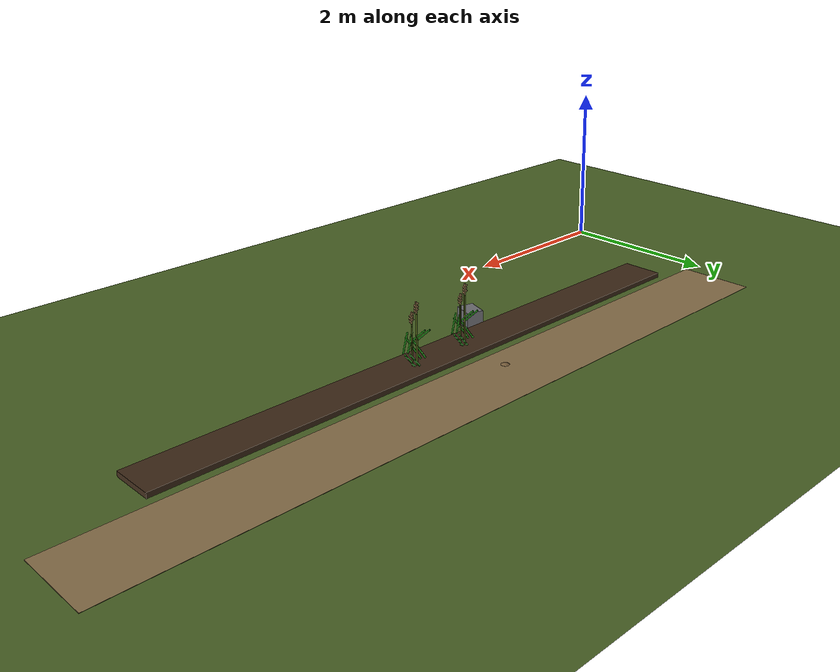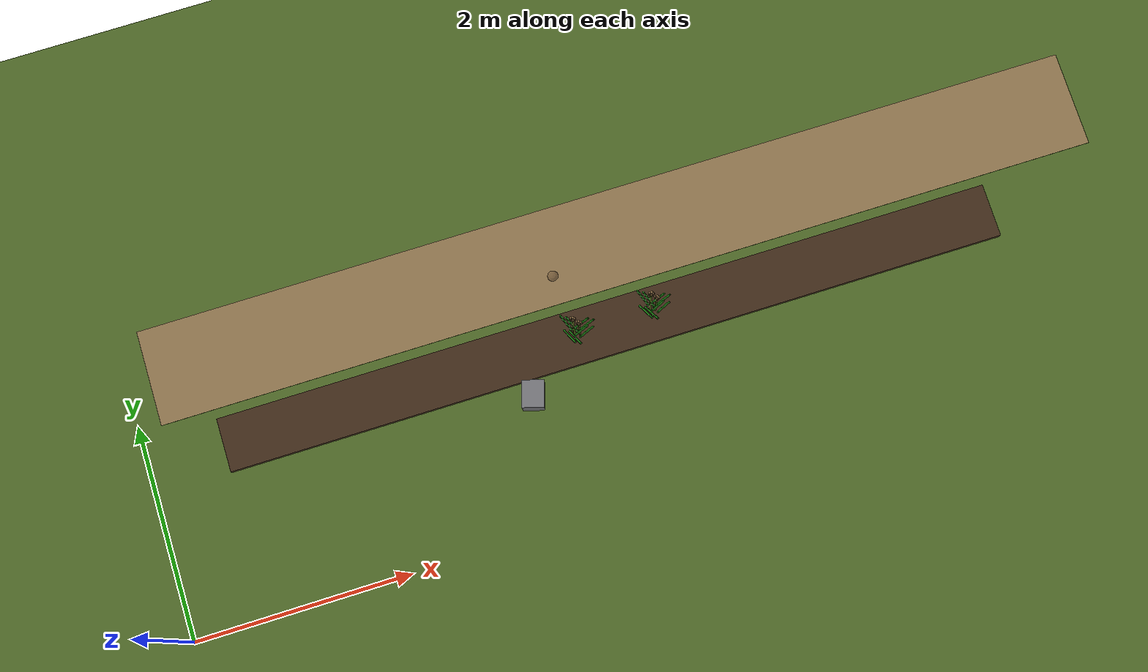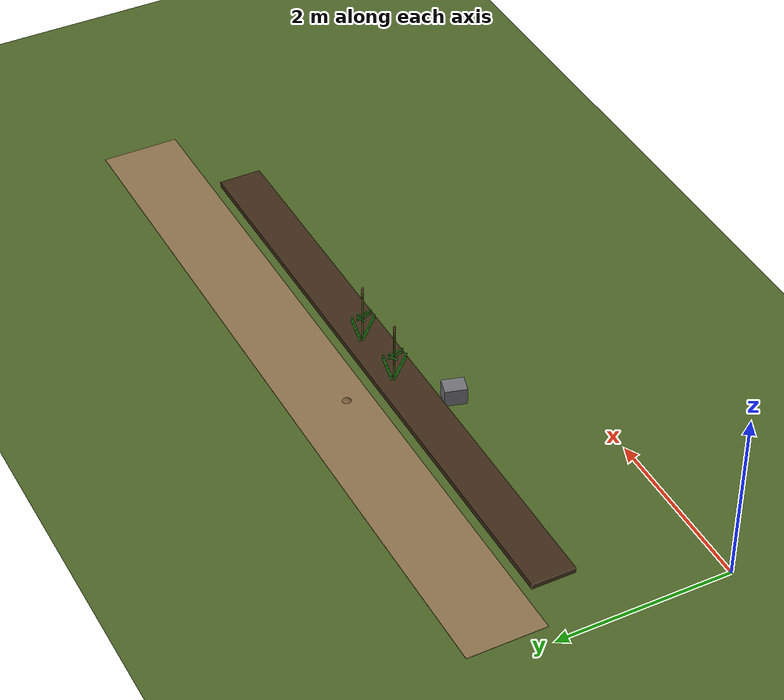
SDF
<sdf version="1.6">
 <world name="default">
  <model name="ground">
   <static>true</static>
   <link name="link">
    <collision name="col"><geometry><plane><normal>0 0 1</normal><size>40 40</size></plane></geometry></collision>
    <visual name="vis">
     <geometry><plane><normal>0 0 1</normal><size>40 40</size></plane></geometry>
     <material><ambient>0.30 0.40 0.15 1</ambient><diffuse>0.30 0.40 0.15 1</diffuse></material>
    </visual>
   </link>
  </model>
  <model name="path_2">
   <static>true</static>
   <pose>4.65 2.40 0.002 0 0 0.00</pose>
   <link name="link">
    <visual name="v">
     <geometry><box><size>8.90 0.90 0.004</size></box></geometry>
     <material><ambient>0.55 0.45 0.30 1</ambient><diffuse>0.55 0.45 0.30 1</diffuse></material>
    </visual>
   </link>
  </model>
  <model name="bed_2a">
   <static>true</static>
   <pose>4.35 1.60 0.030 0 0 0.00</pose>
   <link name="link">
    <visual name="v">
     <geometry><box><size>7.30 0.50 0.060</size></box></geometry>
     <material><ambient>0.25 0.17 0.10 1</ambient><diffuse>0.25 0.17 0.10 1</diffuse></material>
    </visual>
   </link>
  </model>
  <model name="plant_25">
   <static>true</static>
   <pose>4.00 1.64 0 0 0 0</pose>
   <link name="link">
    <visual name="stem_0">
     <pose>0.000 0.000 0.320 0.000 0.000 0.000</pose>
     <geometry><cylinder><radius>0.01</radius><length>0.64</length></cylinder></geometry>
     <material><ambient>0.30 0.38 0.08 1</ambient><diffuse>0.30 0.38 0.08 1</diffuse></material>
    </visual>
    <visual name="leaf_0_0">
     <pose>0.055 0.045 0.130 0.000 0.700 0.150</pose>
     <geometry><cylinder><radius>0.009</radius><length>0.3</length></cylinder></geometry>
     <material><ambient>0.10 0.48 0.06 1</ambient><diffuse>0.10 0.48 0.06 1</diffuse></material>
    </visual>
    <visual name="leaf_0_1">
     <pose>-0.055 -0.045 0.230 0.000 -0.720 1.900</pose>
     <geometry><cylinder><radius>0.009</radius><length>0.28</length></cylinder></geometry>
     <material><ambient>0.10 0.48 0.06 1</ambient><diffuse>0.10 0.48 0.06 1</diffuse></material>
    </visual>
    <visual name="leaf_0_2">
     <pose>0.055 -0.045 0.320 0.000 0.780 3.700</pose>
     <geometry><cylinder><radius>0.009</radius><length>0.24</length></cylinder></geometry>
     <material><ambient>0.10 0.48 0.06 1</ambient><diffuse>0.10 0.48 0.06 1</diffuse></material>
    </visual>
    <visual name="leaf_0_3">
     <pose>-0.055 0.045 0.400 0.000 -0.800 5.200</pose>
     <geometry><cylinder><radius>0.009</radius><length>0.2</length></cylinder></geometry>
     <material><ambient>0.10 0.48 0.06 1</ambient><diffuse>0.10 0.48 0.06 1</diffuse></material>
    </visual>
    <visual name="stem_1">
     <pose>0.045 -0.025 0.265 0.000 0.000 0.000</pose>
     <geometry><cylinder><radius>0.008</radius><length>0.53</length></cylinder></geometry>
     <material><ambient>0.30 0.38 0.08 1</ambient><diffuse>0.30 0.38 0.08 1</diffuse></material>
    </visual>
    <visual name="leaf_1_0">
     <pose>0.100 0.020 0.130 0.000 0.700 0.150</pose>
     <geometry><cylinder><radius>0.009</radius><length>0.3</length></cylinder></geometry>
     <material><ambient>0.10 0.48 0.06 1</ambient><diffuse>0.10 0.48 0.06 1</diffuse></material>
    </visual>
    <visual name="leaf_1_1">
     <pose>-0.010 -0.070 0.230 0.000 -0.720 1.900</pose>
     <geometry><cylinder><radius>0.009</radius><length>0.28</length></cylinder></geometry>
     <material><ambient>0.10 0.48 0.06 1</ambient><diffuse>0.10 0.48 0.06 1</diffuse></material>
    </visual>
    <visual name="leaf_1_2">
     <pose>0.100 -0.070 0.320 0.000 0.780 3.700</pose>
     <geometry><cylinder><radius>0.009</radius><length>0.24</length></cylinder></geometry>
     <material><ambient>0.10 0.48 0.06 1</ambient><diffuse>0.10 0.48 0.06 1</diffuse></material>
    </visual>
    <visual name="leaf_1_3">
     <pose>-0.010 0.020 0.400 0.000 -0.800 5.200</pose>
     <geometry><cylinder><radius>0.009</radius><length>0.2</length></cylinder></geometry>
     <material><ambient>0.10 0.48 0.06 1</ambient><diffuse>0.10 0.48 0.06 1</diffuse></material>
    </visual>
    <visual name="ear_axis_0">
     <pose>0.000 0.000 0.715 0.000 0.000 0.000</pose>
     <geometry><cylinder><radius>0.010</radius><length>0.13</length></cylinder></geometry>
     <material><ambient>0.52 0.40 0.25 1</ambient><diffuse>0.52 0.40 0.25 1</diffuse></material>
    </visual>
    <visual name="grain_0_0">
     <pose>0.012 -0.006 0.675 0.000 0.000 0.000</pose>
     <geometry><sphere><radius>0.012</radius></sphere></geometry>
     <material><ambient>0.52 0.40 0.25 1</ambient><diffuse>0.52 0.40 0.25 1</diffuse></material>
    </visual>
    <visual name="grain_0_1">
     <pose>-0.014 0.006 0.691 0.000 0.000 0.000</pose>
     <geometry><sphere><radius>0.012</radius></sphere></geometry>
     <material><ambient>0.52 0.40 0.25 1</ambient><diffuse>0.52 0.40 0.25 1</diffuse></material>
    </visual>
    <visual name="grain_0_2">
     <pose>0.016 -0.006 0.707 0.000 0.000 0.000</pose>
     <geometry><sphere><radius>0.012</radius></sphere></geometry>
     <material><ambient>0.52 0.40 0.25 1</ambient><diffuse>0.52 0.40 0.25 1</diffuse></material>
    </visual>
    <visual name="grain_0_3">
     <pose>-0.012 0.006 0.723 0.000 0.000 0.000</pose>
     <geometry><sphere><radius>0.012</radius></sphere></geometry>
     <material><ambient>0.52 0.40 0.25 1</ambient><diffuse>0.52 0.40 0.25 1</diffuse></material>
    </visual>
    <visual name="grain_0_4">
     <pose>0.014 -0.006 0.739 0.000 0.000 0.000</pose>
     <geometry><sphere><radius>0.012</radius></sphere></geometry>
     <material><ambient>0.52 0.40 0.25 1</ambient><diffuse>0.52 0.40 0.25 1</diffuse></material>
    </visual>
    <visual name="grain_0_5">
     <pose>-0.016 0.006 0.755 0.000 0.000 0.000</pose>
     <geometry><sphere><radius>0.012</radius></sphere></geometry>
     <material><ambient>0.52 0.40 0.25 1</ambient><diffuse>0.52 0.40 0.25 1</diffuse></material>
    </visual>
    <visual name="ear_axis_1">
     <pose>0.045 -0.025 0.605 0.000 0.000 0.000</pose>
     <geometry><cylinder><radius>0.010</radius><length>0.13</length></cylinder></geometry>
     <material><ambient>0.52 0.40 0.25 1</ambient><diffuse>0.52 0.40 0.25 1</diffuse></material>
    </visual>
    <visual name="grain_1_0">
     <pose>0.057 -0.031 0.565 0.000 0.000 0.000</pose>
     <geometry><sphere><radius>0.012</radius></sphere></geometry>
     <material><ambient>0.52 0.40 0.25 1</ambient><diffuse>0.52 0.40 0.25 1</diffuse></material>
    </visual>
    <visual name="grain_1_1">
     <pose>0.031 -0.019 0.581 0.000 0.000 0.000</pose>
     <geometry><sphere><radius>0.012</radius></sphere></geometry>
     <material><ambient>0.52 0.40 0.25 1</ambient><diffuse>0.52 0.40 0.25 1</diffuse></material>
    </visual>
    <visual name="grain_1_2">
     <pose>0.061 -0.031 0.597 0.000 0.000 0.000</pose>
     <geometry><sphere><radius>0.012</radius></sphere></geometry>
     <material><ambient>0.52 0.40 0.25 1</ambient><diffuse>0.52 0.40 0.25 1</diffuse></material>
    </visual>
    <visual name="grain_1_3">
     <pose>0.033 -0.019 0.613 0.000 0.000 0.000</pose>
     <geometry><sphere><radius>0.012</radius></sphere></geometry>
     <material><ambient>0.52 0.40 0.25 1</ambient><diffuse>0.52 0.40 0.25 1</diffuse></material>
    </visual>
    <visual name="grain_1_4">
     <pose>0.059 -0.031 0.629 0.000 0.000 0.000</pose>
     <geometry><sphere><radius>0.012</radius></sphere></geometry>
     <material><ambient>0.52 0.40 0.25 1</ambient><diffuse>0.52 0.40 0.25 1</diffuse></material>
    </visual>
    <visual name="grain_1_5">
     <pose>0.029 -0.019 0.645 0.000 0.000 0.000</pose>
     <geometry><sphere><radius>0.012</radius></sphere></geometry>
     <material><ambient>0.52 0.40 0.25 1</ambient><diffuse>0.52 0.40 0.25 1</diffuse></material>
    </visual>
   </link>
  </model>
  <model name="plant_26">
   <static>true</static>
   <pose>4.72 1.65 0 0 0 0</pose>
   <link name="link">
    <visual name="stem_0">
     <pose>0.000 0.000 0.320 0.000 0.000 0.000</pose>
     <geometry><cylinder><radius>0.01</radius><length>0.64</length></cylinder></geometry>
     <material><ambient>0.30 0.38 0.08 1</ambient><diffuse>0.30 0.38 0.08 1</diffuse></material>
    </visual>
    <visual name="leaf_0_0">
     <pose>0.055 0.045 0.130 0.000 0.700 0.150</pose>
     <geometry><cylinder><radius>0.009</radius><length>0.3</length></cylinder></geometry>
     <material><ambient>0.10 0.48 0.06 1</ambient><diffuse>0.10 0.48 0.06 1</diffuse></material>
    </visual>
    <visual name="leaf_0_1">
     <pose>-0.055 -0.045 0.230 0.000 -0.720 1.900</pose>
     <geometry><cylinder><radius>0.009</radius><length>0.28</length></cylinder></geometry>
     <material><ambient>0.10 0.48 0.06 1</ambient><diffuse>0.10 0.48 0.06 1</diffuse></material>
    </visual>
    <visual name="leaf_0_2">
     <pose>0.055 -0.045 0.320 0.000 0.780 3.700</pose>
     <geometry><cylinder><radius>0.009</radius><length>0.24</length></cylinder></geometry>
     <material><ambient>0.10 0.48 0.06 1</ambient><diffuse>0.10 0.48 0.06 1</diffuse></material>
    </visual>
    <visual name="leaf_0_3">
     <pose>-0.055 0.045 0.400 0.000 -0.800 5.200</pose>
     <geometry><cylinder><radius>0.009</radius><length>0.2</length></cylinder></geometry>
     <material><ambient>0.10 0.48 0.06 1</ambient><diffuse>0.10 0.48 0.06 1</diffuse></material>
    </visual>
    <visual name="stem_1">
     <pose>0.045 -0.025 0.265 0.000 0.000 0.000</pose>
     <geometry><cylinder><radius>0.008</radius><length>0.53</length></cylinder></geometry>
     <material><ambient>0.30 0.38 0.08 1</ambient><diffuse>0.30 0.38 0.08 1</diffuse></material>
    </visual>
    <visual name="leaf_1_0">
     <pose>0.100 0.020 0.130 0.000 0.700 0.150</pose>
     <geometry><cylinder><radius>0.009</radius><length>0.3</length></cylinder></geometry>
     <material><ambient>0.10 0.48 0.06 1</ambient><diffuse>0.10 0.48 0.06 1</diffuse></material>
    </visual>
    <visual name="leaf_1_1">
     <pose>-0.010 -0.070 0.230 0.000 -0.720 1.900</pose>
     <geometry><cylinder><radius>0.009</radius><length>0.28</length></cylinder></geometry>
     <material><ambient>0.10 0.48 0.06 1</ambient><diffuse>0.10 0.48 0.06 1</diffuse></material>
    </visual>
    <visual name="leaf_1_2">
     <pose>0.100 -0.070 0.320 0.000 0.780 3.700</pose>
     <geometry><cylinder><radius>0.009</radius><length>0.24</length></cylinder></geometry>
     <material><ambient>0.10 0.48 0.06 1</ambient><diffuse>0.10 0.48 0.06 1</diffuse></material>
    </visual>
    <visual name="leaf_1_3">
     <pose>-0.010 0.020 0.400 0.000 -0.800 5.200</pose>
     <geometry><cylinder><radius>0.009</radius><length>0.2</length></cylinder></geometry>
     <material><ambient>0.10 0.48 0.06 1</ambient><diffuse>0.10 0.48 0.06 1</diffuse></material>
    </visual>
    <visual name="ear_axis_0">
     <pose>0.000 0.000 0.715 0.000 0.000 0.000</pose>
     <geometry><cylinder><radius>0.010</radius><length>0.13</length></cylinder></geometry>
     <material><ambient>0.52 0.40 0.25 1</ambient><diffuse>0.52 0.40 0.25 1</diffuse></material>
    </visual>
    <visual name="grain_0_0">
     <pose>0.012 -0.006 0.675 0.000 0.000 0.000</pose>
     <geometry><sphere><radius>0.012</radius></sphere></geometry>
     <material><ambient>0.52 0.40 0.25 1</ambient><diffuse>0.52 0.40 0.25 1</diffuse></material>
    </visual>
    <visual name="grain_0_1">
     <pose>-0.014 0.006 0.691 0.000 0.000 0.000</pose>
     <geometry><sphere><radius>0.012</radius></sphere></geometry>
     <material><ambient>0.52 0.40 0.25 1</ambient><diffuse>0.52 0.40 0.25 1</diffuse></material>
    </visual>
    <visual name="grain_0_2">
     <pose>0.016 -0.006 0.707 0.000 0.000 0.000</pose>
     <geometry><sphere><radius>0.012</radius></sphere></geometry>
     <material><ambient>0.52 0.40 0.25 1</ambient><diffuse>0.52 0.40 0.25 1</diffuse></material>
    </visual>
    <visual name="grain_0_3">
     <pose>-0.012 0.006 0.723 0.000 0.000 0.000</pose>
     <geometry><sphere><radius>0.012</radius></sphere></geometry>
     <material><ambient>0.52 0.40 0.25 1</ambient><diffuse>0.52 0.40 0.25 1</diffuse></material>
    </visual>
    <visual name="grain_0_4">
     <pose>0.014 -0.006 0.739 0.000 0.000 0.000</pose>
     <geometry><sphere><radius>0.012</radius></sphere></geometry>
     <material><ambient>0.52 0.40 0.25 1</ambient><diffuse>0.52 0.40 0.25 1</diffuse></material>
    </visual>
    <visual name="grain_0_5">
     <pose>-0.016 0.006 0.755 0.000 0.000 0.000</pose>
     <geometry><sphere><radius>0.012</radius></sphere></geometry>
     <material><ambient>0.52 0.40 0.25 1</ambient><diffuse>0.52 0.40 0.25 1</diffuse></material>
    </visual>
    <visual name="ear_axis_1">
     <pose>0.045 -0.025 0.605 0.000 0.000 0.000</pose>
     <geometry><cylinder><radius>0.010</radius><length>0.13</length></cylinder></geometry>
     <material><ambient>0.52 0.40 0.25 1</ambient><diffuse>0.52 0.40 0.25 1</diffuse></material>
    </visual>
    <visual name="grain_1_0">
     <pose>0.057 -0.031 0.565 0.000 0.000 0.000</pose>
     <geometry><sphere><radius>0.012</radius></sphere></geometry>
     <material><ambient>0.52 0.40 0.25 1</ambient><diffuse>0.52 0.40 0.25 1</diffuse></material>
    </visual>
    <visual name="grain_1_1">
     <pose>0.031 -0.019 0.581 0.000 0.000 0.000</pose>
     <geometry><sphere><radius>0.012</radius></sphere></geometry>
     <material><ambient>0.52 0.40 0.25 1</ambient><diffuse>0.52 0.40 0.25 1</diffuse></material>
    </visual>
    <visual name="grain_1_2">
     <pose>0.061 -0.031 0.597 0.000 0.000 0.000</pose>
     <geometry><sphere><radius>0.012</radius></sphere></geometry>
     <material><ambient>0.52 0.40 0.25 1</ambient><diffuse>0.52 0.40 0.25 1</diffuse></material>
    </visual>
    <visual name="grain_1_3">
     <pose>0.033 -0.019 0.613 0.000 0.000 0.000</pose>
     <geometry><sphere><radius>0.012</radius></sphere></geometry>
     <material><ambient>0.52 0.40 0.25 1</ambient><diffuse>0.52 0.40 0.25 1</diffuse></material>
    </visual>
    <visual name="grain_1_4">
     <pose>0.059 -0.031 0.629 0.000 0.000 0.000</pose>
     <geometry><sphere><radius>0.012</radius></sphere></geometry>
     <material><ambient>0.52 0.40 0.25 1</ambient><diffuse>0.52 0.40 0.25 1</diffuse></material>
    </visual>
    <visual name="grain_1_5">
     <pose>0.029 -0.019 0.645 0.000 0.000 0.000</pose>
     <geometry><sphere><radius>0.012</radius></sphere></geometry>
     <material><ambient>0.52 0.40 0.25 1</ambient><diffuse>0.52 0.40 0.25 1</diffuse></material>
    </visual>
   </link>
  </model>
  <model name="rock_05">
   <static>true</static>
   <pose>3.48 1.20 0.100 0 0 1.29</pose>
   <link name="link">
    <collision name="c"><geometry><box><size>0.25 0.20 0.199</size></box></geometry></collision>
    <visual name="v">
     <geometry><box><size>0.25 0.20 0.199</size></box></geometry>
     <material><ambient>0.45 0.45 0.47 1</ambient><diffuse>0.45 0.45 0.47 1</diffuse></material>
    </visual>
   </link>
  </model>
  <model name="bump_2_05">
   <static>true</static>
   <pose>3.97 2.22 -0.066 0 0 0</pose>
   <link name="link">
    <collision name="c"><geometry><sphere><radius>0.086</radius></sphere></geometry></collision>
    <visual name="v">
     <geometry><sphere><radius>0.086</radius></sphere></geometry>
     <material><ambient>0.45 0.35 0.22 1</ambient><diffuse>0.45 0.35 0.22 1</diffuse></material>
    </visual>
   </link>
  </model>
 </world>
</sdf>
